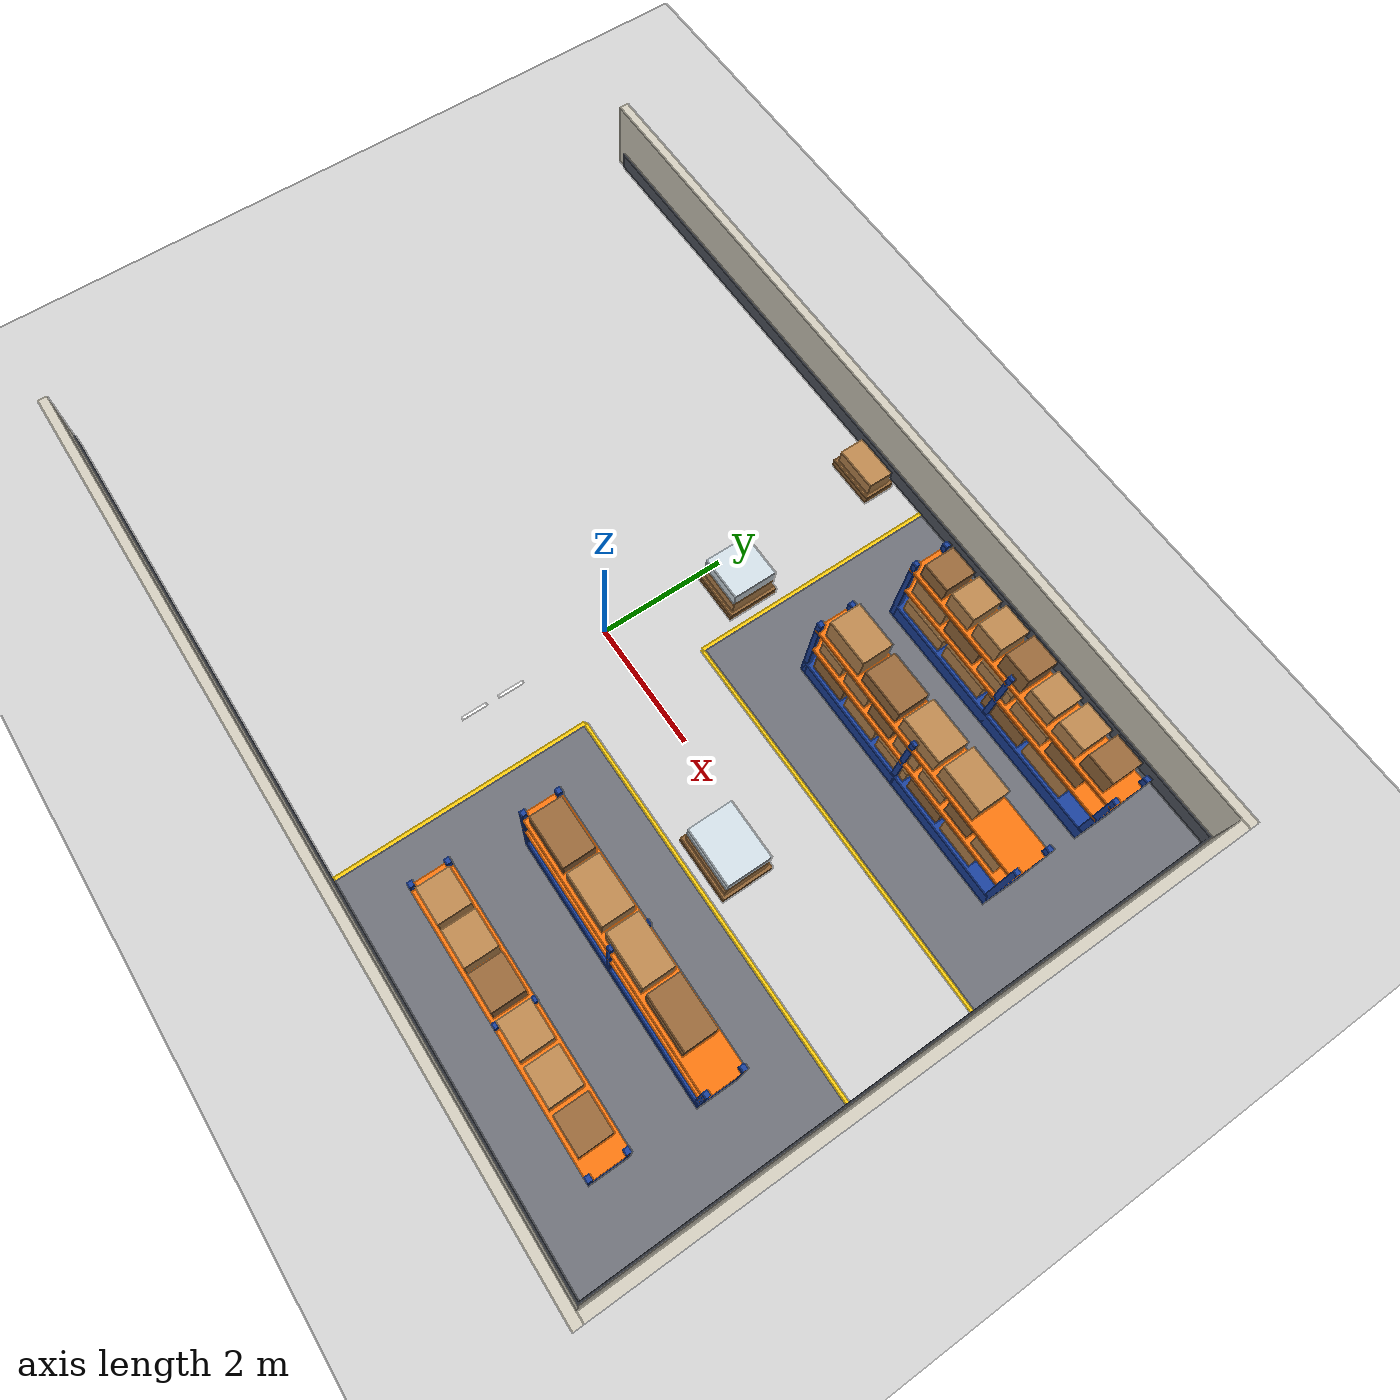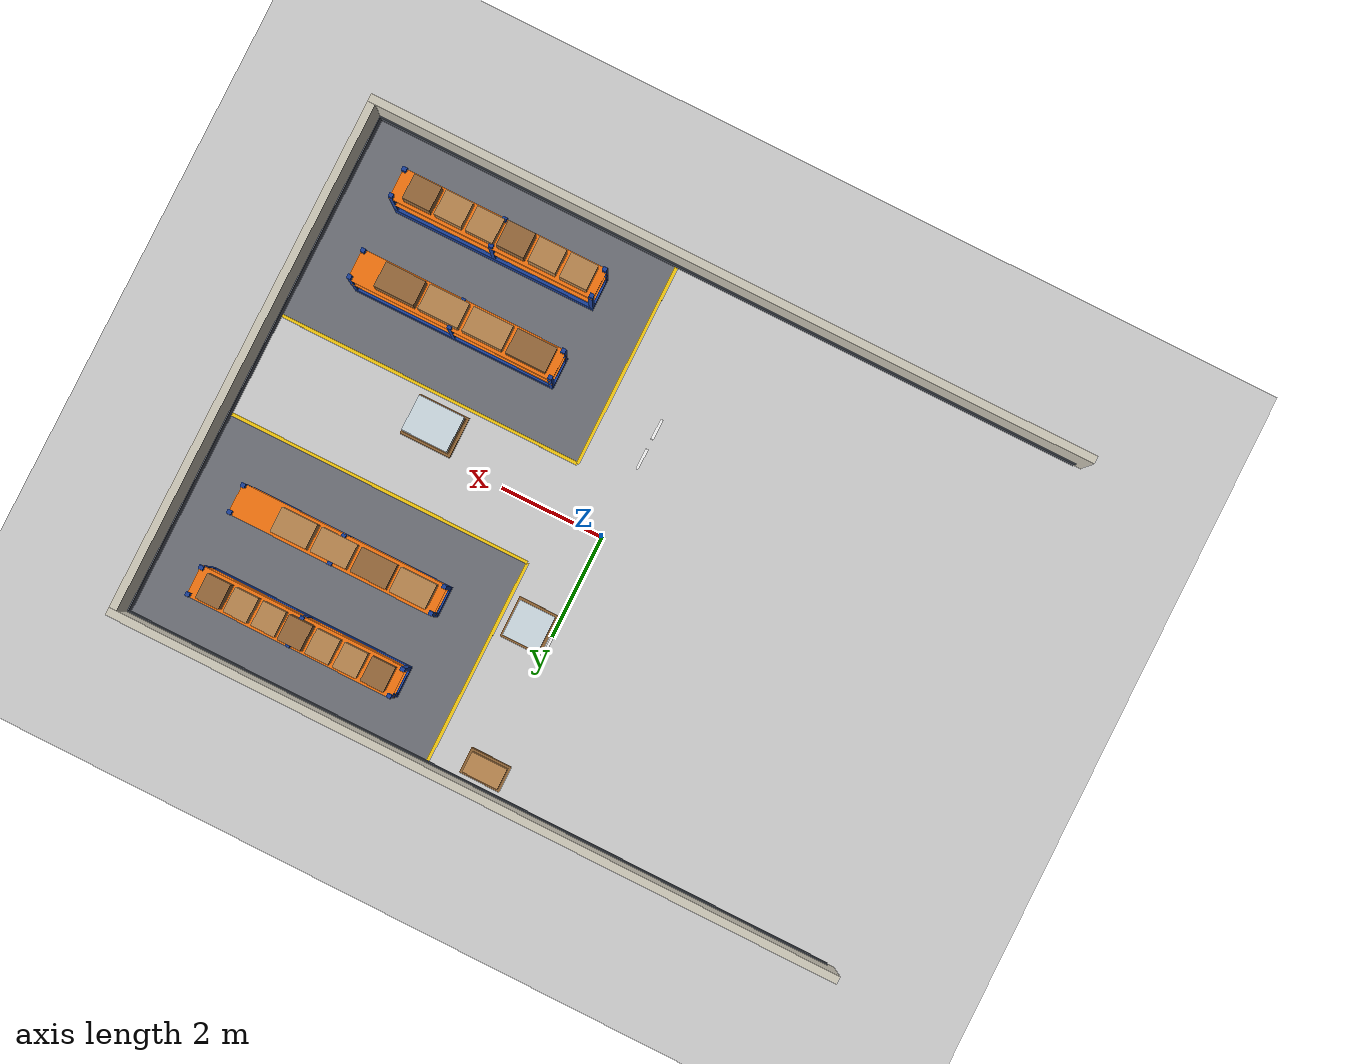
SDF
<sdf version="1.6">
 <world name="default">
  <include><uri>model://ground_plane</uri></include>
  <include><uri>model://sun</uri></include>
  <model name="amr_warehouse">
   <static>true</static>
   <link name="floor_storage_1_-1">
    <pose>4.000 -3.000 0.001 0 0 0</pose>
    <visual name="v">
     <geometry><box><size>6.000 4.000 0.002</size></box></geometry>
     <material>
      <ambient>0.42 0.43 0.46 1</ambient>
      <diffuse>0.42 0.43 0.46 1</diffuse>
      <specular>0.1 0.1 0.1 1</specular>
     </material>
    </visual>
   </link>
   <link name="floor_storage_1_1">
    <pose>4.000 3.000 0.001 0 0 0</pose>
    <visual name="v">
     <geometry><box><size>6.000 4.000 0.002</size></box></geometry>
     <material>
      <ambient>0.42 0.43 0.46 1</ambient>
      <diffuse>0.42 0.43 0.46 1</diffuse>
      <specular>0.1 0.1 0.1 1</specular>
     </material>
    </visual>
   </link>
   <link name="mark_ew_e_-1">
    <pose>4.000 -1.000 0.003 0 0 0</pose>
    <visual name="v">
     <geometry><box><size>6.000 0.060 0.002</size></box></geometry>
     <material>
      <ambient>0.95 0.78 0.05 1</ambient>
      <diffuse>0.95 0.78 0.05 1</diffuse>
      <specular>0.1 0.1 0.1 1</specular>
     </material>
    </visual>
   </link>
   <link name="mark_ns_s_1">
    <pose>1.000 -3.000 0.003 0 0 0</pose>
    <visual name="v">
     <geometry><box><size>0.060 4.000 0.002</size></box></geometry>
     <material>
      <ambient>0.95 0.78 0.05 1</ambient>
      <diffuse>0.95 0.78 0.05 1</diffuse>
      <specular>0.1 0.1 0.1 1</specular>
     </material>
    </visual>
   </link>
   <link name="mark_ns_n_1">
    <pose>1.000 3.000 0.003 0 0 0</pose>
    <visual name="v">
     <geometry><box><size>0.060 4.000 0.002</size></box></geometry>
     <material>
      <ambient>0.95 0.78 0.05 1</ambient>
      <diffuse>0.95 0.78 0.05 1</diffuse>
      <specular>0.1 0.1 0.1 1</specular>
     </material>
    </visual>
   </link>
   <link name="mark_ew_e_1">
    <pose>4.000 1.000 0.003 0 0 0</pose>
    <visual name="v">
     <geometry><box><size>6.000 0.060 0.002</size></box></geometry>
     <material>
      <ambient>0.95 0.78 0.05 1</ambient>
      <diffuse>0.95 0.78 0.05 1</diffuse>
      <specular>0.1 0.1 0.1 1</specular>
     </material>
    </visual>
   </link>
   <link name="mark_center_0">
    <pose>0.000 -2.200 0.003 0 0 0</pose>
    <visual name="v">
     <geometry><box><size>0.050 0.400 0.002</size></box></geometry>
     <material>
      <ambient>0.95 0.95 0.95 1</ambient>
      <diffuse>0.95 0.95 0.95 1</diffuse>
      <specular>0.1 0.1 0.1 1</specular>
     </material>
    </visual>
   </link>
   <link name="mark_center_1">
    <pose>0.000 -1.600 0.003 0 0 0</pose>
    <visual name="v">
     <geometry><box><size>0.050 0.400 0.002</size></box></geometry>
     <material>
      <ambient>0.95 0.95 0.95 1</ambient>
      <diffuse>0.95 0.95 0.95 1</diffuse>
      <specular>0.1 0.1 0.1 1</specular>
     </material>
    </visual>
   </link>
   <link name="mark_center_2">
    <pose>0.000 1.600 0.003 0 0 0</pose>
    <visual name="v">
     <geometry><box><size>0.050 0.400 0.002</size></box></geometry>
     <material>
      <ambient>0.95 0.95 0.95 1</ambient>
      <diffuse>0.95 0.95 0.95 1</diffuse>
      <specular>0.1 0.1 0.1 1</specular>
     </material>
    </visual>
   </link>
   <link name="mark_center_3">
    <pose>0.000 2.200 0.003 0 0 0</pose>
    <visual name="v">
     <geometry><box><size>0.050 0.400 0.002</size></box></geometry>
     <material>
      <ambient>0.95 0.95 0.95 1</ambient>
      <diffuse>0.95 0.95 0.95 1</diffuse>
      <specular>0.1 0.1 0.1 1</specular>
     </material>
    </visual>
   </link>
   <link name="wall_n">
    <pose>0.000 5.075 0.600 0 0 0</pose>
    <collision name="c"><geometry><box><size>14.300 0.150 1.200</size></box></geometry></collision>
    <visual name="v">
     <geometry><box><size>14.300 0.150 1.200</size></box></geometry>
     <material>
      <ambient>0.8 0.78 0.72 1</ambient>
      <diffuse>0.8 0.78 0.72 1</diffuse>
      <specular>0.1 0.1 0.1 1</specular>
     </material>
    </visual>
   </link>
   <link name="wall_s">
    <pose>0.000 -5.075 0.600 0 0 0</pose>
    <collision name="c"><geometry><box><size>14.300 0.150 1.200</size></box></geometry></collision>
    <visual name="v">
     <geometry><box><size>14.300 0.150 1.200</size></box></geometry>
     <material>
      <ambient>0.8 0.78 0.72 1</ambient>
      <diffuse>0.8 0.78 0.72 1</diffuse>
      <specular>0.1 0.1 0.1 1</specular>
     </material>
    </visual>
   </link>
   <link name="wall_e">
    <pose>7.075 0.000 0.600 0 0 0</pose>
    <collision name="c"><geometry><box><size>0.150 10.000 1.200</size></box></geometry></collision>
    <visual name="v">
     <geometry><box><size>0.150 10.000 1.200</size></box></geometry>
     <material>
      <ambient>0.8 0.78 0.72 1</ambient>
      <diffuse>0.8 0.78 0.72 1</diffuse>
      <specular>0.1 0.1 0.1 1</specular>
     </material>
    </visual>
   </link>
   <link name="wall_stripe0">
    <pose>0.000 4.990 0.150 0 0 0</pose>
    <visual name="v">
     <geometry><box><size>14.000 0.020 0.300</size></box></geometry>
     <material>
      <ambient>0.3 0.32 0.36 1</ambient>
      <diffuse>0.3 0.32 0.36 1</diffuse>
      <specular>0.1 0.1 0.1 1</specular>
     </material>
    </visual>
   </link>
   <link name="wall_stripe1">
    <pose>0.000 -4.990 0.150 0 0 0</pose>
    <visual name="v">
     <geometry><box><size>14.000 0.020 0.300</size></box></geometry>
     <material>
      <ambient>0.3 0.32 0.36 1</ambient>
      <diffuse>0.3 0.32 0.36 1</diffuse>
      <specular>0.1 0.1 0.1 1</specular>
     </material>
    </visual>
   </link>
   <link name="wall_stripe2">
    <pose>6.990 0.000 0.150 0 0 0</pose>
    <visual name="v">
     <geometry><box><size>0.020 10.000 0.300</size></box></geometry>
     <material>
      <ambient>0.3 0.32 0.36 1</ambient>
      <diffuse>0.3 0.32 0.36 1</diffuse>
      <specular>0.1 0.1 0.1 1</specular>
     </material>
    </visual>
   </link>
   <link name="rack_WS0_base">
    <pose>4.000 -2.300 0.150 0 0 0</pose>
    <collision name="c"><geometry><box><size>4.000 0.600 0.300</size></box></geometry></collision>
    <visual name="v">
     <geometry><box><size>4.000 0.600 0.300</size></box></geometry>
     <material>
      <ambient>0.1 0.25 0.6 1</ambient>
      <diffuse>0.1 0.25 0.6 1</diffuse>
      <specular>0.1 0.1 0.1 1</specular>
     </material>
    </visual>
   </link>
   <link name="rack_WS0_post00">
    <pose>2.040 -2.560 0.800 0 0 0</pose>
    <collision name="c"><geometry><box><size>0.080 0.080 1.600</size></box></geometry></collision>
    <visual name="v">
     <geometry><box><size>0.080 0.080 1.600</size></box></geometry>
     <material>
      <ambient>0.1 0.25 0.6 1</ambient>
      <diffuse>0.1 0.25 0.6 1</diffuse>
      <specular>0.1 0.1 0.1 1</specular>
     </material>
    </visual>
   </link>
   <link name="rack_WS0_post01">
    <pose>2.040 -2.040 0.800 0 0 0</pose>
    <collision name="c"><geometry><box><size>0.080 0.080 1.600</size></box></geometry></collision>
    <visual name="v">
     <geometry><box><size>0.080 0.080 1.600</size></box></geometry>
     <material>
      <ambient>0.1 0.25 0.6 1</ambient>
      <diffuse>0.1 0.25 0.6 1</diffuse>
      <specular>0.1 0.1 0.1 1</specular>
     </material>
    </visual>
   </link>
   <link name="rack_WS0_post10">
    <pose>4.000 -2.560 0.800 0 0 0</pose>
    <collision name="c"><geometry><box><size>0.080 0.080 1.600</size></box></geometry></collision>
    <visual name="v">
     <geometry><box><size>0.080 0.080 1.600</size></box></geometry>
     <material>
      <ambient>0.1 0.25 0.6 1</ambient>
      <diffuse>0.1 0.25 0.6 1</diffuse>
      <specular>0.1 0.1 0.1 1</specular>
     </material>
    </visual>
   </link>
   <link name="rack_WS0_post11">
    <pose>4.000 -2.040 0.800 0 0 0</pose>
    <collision name="c"><geometry><box><size>0.080 0.080 1.600</size></box></geometry></collision>
    <visual name="v">
     <geometry><box><size>0.080 0.080 1.600</size></box></geometry>
     <material>
      <ambient>0.1 0.25 0.6 1</ambient>
      <diffuse>0.1 0.25 0.6 1</diffuse>
      <specular>0.1 0.1 0.1 1</specular>
     </material>
    </visual>
   </link>
   <link name="rack_WS0_post20">
    <pose>5.960 -2.560 0.800 0 0 0</pose>
    <collision name="c"><geometry><box><size>0.080 0.080 1.600</size></box></geometry></collision>
    <visual name="v">
     <geometry><box><size>0.080 0.080 1.600</size></box></geometry>
     <material>
      <ambient>0.1 0.25 0.6 1</ambient>
      <diffuse>0.1 0.25 0.6 1</diffuse>
      <specular>0.1 0.1 0.1 1</specular>
     </material>
    </visual>
   </link>
   <link name="rack_WS0_post21">
    <pose>5.960 -2.040 0.800 0 0 0</pose>
    <collision name="c"><geometry><box><size>0.080 0.080 1.600</size></box></geometry></collision>
    <visual name="v">
     <geometry><box><size>0.080 0.080 1.600</size></box></geometry>
     <material>
      <ambient>0.1 0.25 0.6 1</ambient>
      <diffuse>0.1 0.25 0.6 1</diffuse>
      <specular>0.1 0.1 0.1 1</specular>
     </material>
    </visual>
   </link>
   <link name="rack_WS0_beam0">
    <pose>4.000 -2.300 0.850 0 0 0</pose>
    <collision name="c"><geometry><box><size>4.000 0.600 0.050</size></box></geometry></collision>
    <visual name="v">
     <geometry><box><size>4.000 0.600 0.050</size></box></geometry>
     <material>
      <ambient>0.95 0.45 0.05 1</ambient>
      <diffuse>0.95 0.45 0.05 1</diffuse>
      <specular>0.1 0.1 0.1 1</specular>
     </material>
    </visual>
   </link>
   <link name="rack_WS0_beam1">
    <pose>4.000 -2.300 1.400 0 0 0</pose>
    <collision name="c"><geometry><box><size>4.000 0.600 0.050</size></box></geometry></collision>
    <visual name="v">
     <geometry><box><size>4.000 0.600 0.050</size></box></geometry>
     <material>
      <ambient>0.95 0.45 0.05 1</ambient>
      <diffuse>0.95 0.45 0.05 1</diffuse>
      <specular>0.1 0.1 0.1 1</specular>
     </material>
    </visual>
   </link>
   <link name="rack_WS0_carton0_0">
    <pose>2.495 -2.300 0.510 0 0 0</pose>
    <visual name="v">
     <geometry><box><size>0.690 0.480 0.420</size></box></geometry>
     <material>
      <ambient>0.72 0.52 0.3 1</ambient>
      <diffuse>0.72 0.52 0.3 1</diffuse>
      <specular>0.1 0.1 0.1 1</specular>
     </material>
    </visual>
   </link>
   <link name="rack_WS0_carton0_1">
    <pose>3.265 -2.300 0.450 0 0 0</pose>
    <visual name="v">
     <geometry><box><size>0.690 0.480 0.300</size></box></geometry>
     <material>
      <ambient>0.72 0.52 0.3 1</ambient>
      <diffuse>0.72 0.52 0.3 1</diffuse>
      <specular>0.1 0.1 0.1 1</specular>
     </material>
    </visual>
   </link>
   <link name="rack_WS0_carton0_2">
    <pose>4.035 -2.300 0.470 0 0 0</pose>
    <visual name="v">
     <geometry><box><size>0.690 0.480 0.340</size></box></geometry>
     <material>
      <ambient>0.58 0.4 0.22 1</ambient>
      <diffuse>0.58 0.4 0.22 1</diffuse>
      <specular>0.1 0.1 0.1 1</specular>
     </material>
    </visual>
   </link>
   <link name="rack_WS0_carton0_3">
    <pose>4.805 -2.300 0.490 0 0 0</pose>
    <visual name="v">
     <geometry><box><size>0.690 0.480 0.380</size></box></geometry>
     <material>
      <ambient>0.72 0.52 0.3 1</ambient>
      <diffuse>0.72 0.52 0.3 1</diffuse>
      <specular>0.1 0.1 0.1 1</specular>
     </material>
    </visual>
   </link>
   <link name="rack_WS0_carton1_0">
    <pose>2.415 -2.300 1.045 0 0 0</pose>
    <visual name="v">
     <geometry><box><size>0.530 0.480 0.340</size></box></geometry>
     <material>
      <ambient>0.72 0.52 0.3 1</ambient>
      <diffuse>0.72 0.52 0.3 1</diffuse>
      <specular>0.1 0.1 0.1 1</specular>
     </material>
    </visual>
   </link>
   <link name="rack_WS0_carton1_1">
    <pose>3.025 -2.300 1.065 0 0 0</pose>
    <visual name="v">
     <geometry><box><size>0.530 0.480 0.380</size></box></geometry>
     <material>
      <ambient>0.58 0.4 0.22 1</ambient>
      <diffuse>0.58 0.4 0.22 1</diffuse>
      <specular>0.1 0.1 0.1 1</specular>
     </material>
    </visual>
   </link>
   <link name="rack_WS0_carton1_2">
    <pose>3.635 -2.300 1.085 0 0 0</pose>
    <visual name="v">
     <geometry><box><size>0.530 0.480 0.420</size></box></geometry>
     <material>
      <ambient>0.72 0.52 0.3 1</ambient>
      <diffuse>0.72 0.52 0.3 1</diffuse>
      <specular>0.1 0.1 0.1 1</specular>
     </material>
    </visual>
   </link>
   <link name="rack_WS0_carton1_3">
    <pose>4.245 -2.300 1.025 0 0 0</pose>
    <visual name="v">
     <geometry><box><size>0.530 0.480 0.300</size></box></geometry>
     <material>
      <ambient>0.72 0.52 0.3 1</ambient>
      <diffuse>0.72 0.52 0.3 1</diffuse>
      <specular>0.1 0.1 0.1 1</specular>
     </material>
    </visual>
   </link>
   <link name="rack_WS0_carton1_4">
    <pose>4.855 -2.300 1.045 0 0 0</pose>
    <visual name="v">
     <geometry><box><size>0.530 0.480 0.340</size></box></geometry>
     <material>
      <ambient>0.58 0.4 0.22 1</ambient>
      <diffuse>0.58 0.4 0.22 1</diffuse>
      <specular>0.1 0.1 0.1 1</specular>
     </material>
    </visual>
   </link>
   <link name="rack_WS0_carton1_5">
    <pose>5.465 -2.300 1.065 0 0 0</pose>
    <visual name="v">
     <geometry><box><size>0.530 0.480 0.380</size></box></geometry>
     <material>
      <ambient>0.72 0.52 0.3 1</ambient>
      <diffuse>0.72 0.52 0.3 1</diffuse>
      <specular>0.1 0.1 0.1 1</specular>
     </material>
    </visual>
   </link>
   <link name="rack_WS0_carton2_0">
    <pose>2.535 -2.300 1.575 0 0 0</pose>
    <visual name="v">
     <geometry><box><size>0.770 0.480 0.300</size></box></geometry>
     <material>
      <ambient>0.58 0.4 0.22 1</ambient>
      <diffuse>0.58 0.4 0.22 1</diffuse>
      <specular>0.1 0.1 0.1 1</specular>
     </material>
    </visual>
   </link>
   <link name="rack_WS0_carton2_1">
    <pose>3.385 -2.300 1.595 0 0 0</pose>
    <visual name="v">
     <geometry><box><size>0.770 0.480 0.340</size></box></geometry>
     <material>
      <ambient>0.72 0.52 0.3 1</ambient>
      <diffuse>0.72 0.52 0.3 1</diffuse>
      <specular>0.1 0.1 0.1 1</specular>
     </material>
    </visual>
   </link>
   <link name="rack_WS0_carton2_2">
    <pose>4.235 -2.300 1.615 0 0 0</pose>
    <visual name="v">
     <geometry><box><size>0.770 0.480 0.380</size></box></geometry>
     <material>
      <ambient>0.72 0.52 0.3 1</ambient>
      <diffuse>0.72 0.52 0.3 1</diffuse>
      <specular>0.1 0.1 0.1 1</specular>
     </material>
    </visual>
   </link>
   <link name="rack_WS0_carton2_3">
    <pose>5.085 -2.300 1.635 0 0 0</pose>
    <visual name="v">
     <geometry><box><size>0.770 0.480 0.420</size></box></geometry>
     <material>
      <ambient>0.58 0.4 0.22 1</ambient>
      <diffuse>0.58 0.4 0.22 1</diffuse>
      <specular>0.1 0.1 0.1 1</specular>
     </material>
    </visual>
   </link>
   <link name="rack_WS1_base">
    <pose>4.000 -3.900 0.150 0 0 0</pose>
    <collision name="c"><geometry><box><size>4.000 0.600 0.300</size></box></geometry></collision>
    <visual name="v">
     <geometry><box><size>4.000 0.600 0.300</size></box></geometry>
     <material>
      <ambient>0.1 0.25 0.6 1</ambient>
      <diffuse>0.1 0.25 0.6 1</diffuse>
      <specular>0.1 0.1 0.1 1</specular>
     </material>
    </visual>
   </link>
   <link name="rack_WS1_post00">
    <pose>2.040 -4.160 0.800 0 0 0</pose>
    <collision name="c"><geometry><box><size>0.080 0.080 1.600</size></box></geometry></collision>
    <visual name="v">
     <geometry><box><size>0.080 0.080 1.600</size></box></geometry>
     <material>
      <ambient>0.1 0.25 0.6 1</ambient>
      <diffuse>0.1 0.25 0.6 1</diffuse>
      <specular>0.1 0.1 0.1 1</specular>
     </material>
    </visual>
   </link>
   <link name="rack_WS1_post01">
    <pose>2.040 -3.640 0.800 0 0 0</pose>
    <collision name="c"><geometry><box><size>0.080 0.080 1.600</size></box></geometry></collision>
    <visual name="v">
     <geometry><box><size>0.080 0.080 1.600</size></box></geometry>
     <material>
      <ambient>0.1 0.25 0.6 1</ambient>
      <diffuse>0.1 0.25 0.6 1</diffuse>
      <specular>0.1 0.1 0.1 1</specular>
     </material>
    </visual>
   </link>
   <link name="rack_WS1_post10">
    <pose>4.000 -4.160 0.800 0 0 0</pose>
    <collision name="c"><geometry><box><size>0.080 0.080 1.600</size></box></geometry></collision>
    <visual name="v">
     <geometry><box><size>0.080 0.080 1.600</size></box></geometry>
     <material>
      <ambient>0.1 0.25 0.6 1</ambient>
      <diffuse>0.1 0.25 0.6 1</diffuse>
      <specular>0.1 0.1 0.1 1</specular>
     </material>
    </visual>
   </link>
   <link name="rack_WS1_post11">
    <pose>4.000 -3.640 0.800 0 0 0</pose>
    <collision name="c"><geometry><box><size>0.080 0.080 1.600</size></box></geometry></collision>
    <visual name="v">
     <geometry><box><size>0.080 0.080 1.600</size></box></geometry>
     <material>
      <ambient>0.1 0.25 0.6 1</ambient>
      <diffuse>0.1 0.25 0.6 1</diffuse>
      <specular>0.1 0.1 0.1 1</specular>
     </material>
    </visual>
   </link>
   <link name="rack_WS1_post20">
    <pose>5.960 -4.160 0.800 0 0 0</pose>
    <collision name="c"><geometry><box><size>0.080 0.080 1.600</size></box></geometry></collision>
    <visual name="v">
     <geometry><box><size>0.080 0.080 1.600</size></box></geometry>
     <material>
      <ambient>0.1 0.25 0.6 1</ambient>
      <diffuse>0.1 0.25 0.6 1</diffuse>
      <specular>0.1 0.1 0.1 1</specular>
     </material>
    </visual>
   </link>
   <link name="rack_WS1_post21">
    <pose>5.960 -3.640 0.800 0 0 0</pose>
    <collision name="c"><geometry><box><size>0.080 0.080 1.600</size></box></geometry></collision>
    <visual name="v">
     <geometry><box><size>0.080 0.080 1.600</size></box></geometry>
     <material>
      <ambient>0.1 0.25 0.6 1</ambient>
      <diffuse>0.1 0.25 0.6 1</diffuse>
      <specular>0.1 0.1 0.1 1</specular>
     </material>
    </visual>
   </link>
   <link name="rack_WS1_beam0">
    <pose>4.000 -3.900 0.850 0 0 0</pose>
    <collision name="c"><geometry><box><size>4.000 0.600 0.050</size></box></geometry></collision>
    <visual name="v">
     <geometry><box><size>4.000 0.600 0.050</size></box></geometry>
     <material>
      <ambient>0.95 0.45 0.05 1</ambient>
      <diffuse>0.95 0.45 0.05 1</diffuse>
      <specular>0.1 0.1 0.1 1</specular>
     </material>
    </visual>
   </link>
   <link name="rack_WS1_beam1">
    <pose>4.000 -3.900 1.400 0 0 0</pose>
    <collision name="c"><geometry><box><size>4.000 0.600 0.050</size></box></geometry></collision>
    <visual name="v">
     <geometry><box><size>4.000 0.600 0.050</size></box></geometry>
     <material>
      <ambient>0.95 0.45 0.05 1</ambient>
      <diffuse>0.95 0.45 0.05 1</diffuse>
      <specular>0.1 0.1 0.1 1</specular>
     </material>
    </visual>
   </link>
   <link name="rack_WS1_carton0_0">
    <pose>2.375 -3.900 0.450 0 0 0</pose>
    <visual name="v">
     <geometry><box><size>0.450 0.480 0.300</size></box></geometry>
     <material>
      <ambient>0.72 0.52 0.3 1</ambient>
      <diffuse>0.72 0.52 0.3 1</diffuse>
      <specular>0.1 0.1 0.1 1</specular>
     </material>
    </visual>
   </link>
   <link name="rack_WS1_carton0_1">
    <pose>2.905 -3.900 0.470 0 0 0</pose>
    <visual name="v">
     <geometry><box><size>0.450 0.480 0.340</size></box></geometry>
     <material>
      <ambient>0.58 0.4 0.22 1</ambient>
      <diffuse>0.58 0.4 0.22 1</diffuse>
      <specular>0.1 0.1 0.1 1</specular>
     </material>
    </visual>
   </link>
   <link name="rack_WS1_carton0_2">
    <pose>3.435 -3.900 0.490 0 0 0</pose>
    <visual name="v">
     <geometry><box><size>0.450 0.480 0.380</size></box></geometry>
     <material>
      <ambient>0.72 0.52 0.3 1</ambient>
      <diffuse>0.72 0.52 0.3 1</diffuse>
      <specular>0.1 0.1 0.1 1</specular>
     </material>
    </visual>
   </link>
   <link name="rack_WS1_carton0_3">
    <pose>3.965 -3.900 0.510 0 0 0</pose>
    <visual name="v">
     <geometry><box><size>0.450 0.480 0.420</size></box></geometry>
     <material>
      <ambient>0.72 0.52 0.3 1</ambient>
      <diffuse>0.72 0.52 0.3 1</diffuse>
      <specular>0.1 0.1 0.1 1</specular>
     </material>
    </visual>
   </link>
   <link name="rack_WS1_carton0_4">
    <pose>4.495 -3.900 0.450 0 0 0</pose>
    <visual name="v">
     <geometry><box><size>0.450 0.480 0.300</size></box></geometry>
     <material>
      <ambient>0.58 0.4 0.22 1</ambient>
      <diffuse>0.58 0.4 0.22 1</diffuse>
      <specular>0.1 0.1 0.1 1</specular>
     </material>
    </visual>
   </link>
   <link name="rack_WS1_carton0_5">
    <pose>5.025 -3.900 0.470 0 0 0</pose>
    <visual name="v">
     <geometry><box><size>0.450 0.480 0.340</size></box></geometry>
     <material>
      <ambient>0.72 0.52 0.3 1</ambient>
      <diffuse>0.72 0.52 0.3 1</diffuse>
      <specular>0.1 0.1 0.1 1</specular>
     </material>
    </visual>
   </link>
   <link name="rack_WS1_carton0_6">
    <pose>5.555 -3.900 0.490 0 0 0</pose>
    <visual name="v">
     <geometry><box><size>0.450 0.480 0.380</size></box></geometry>
     <material>
      <ambient>0.72 0.52 0.3 1</ambient>
      <diffuse>0.72 0.52 0.3 1</diffuse>
      <specular>0.1 0.1 0.1 1</specular>
     </material>
    </visual>
   </link>
   <link name="rack_WS1_carton1_0">
    <pose>2.495 -3.900 1.085 0 0 0</pose>
    <visual name="v">
     <geometry><box><size>0.690 0.480 0.420</size></box></geometry>
     <material>
      <ambient>0.58 0.4 0.22 1</ambient>
      <diffuse>0.58 0.4 0.22 1</diffuse>
      <specular>0.1 0.1 0.1 1</specular>
     </material>
    </visual>
   </link>
   <link name="rack_WS1_carton1_1">
    <pose>3.265 -3.900 1.025 0 0 0</pose>
    <visual name="v">
     <geometry><box><size>0.690 0.480 0.300</size></box></geometry>
     <material>
      <ambient>0.72 0.52 0.3 1</ambient>
      <diffuse>0.72 0.52 0.3 1</diffuse>
      <specular>0.1 0.1 0.1 1</specular>
     </material>
    </visual>
   </link>
   <link name="rack_WS1_carton1_2">
    <pose>4.035 -3.900 1.045 0 0 0</pose>
    <visual name="v">
     <geometry><box><size>0.690 0.480 0.340</size></box></geometry>
     <material>
      <ambient>0.72 0.52 0.3 1</ambient>
      <diffuse>0.72 0.52 0.3 1</diffuse>
      <specular>0.1 0.1 0.1 1</specular>
     </material>
    </visual>
   </link>
   <link name="rack_WS1_carton1_3">
    <pose>4.805 -3.900 1.065 0 0 0</pose>
    <visual name="v">
     <geometry><box><size>0.690 0.480 0.380</size></box></geometry>
     <material>
      <ambient>0.58 0.4 0.22 1</ambient>
      <diffuse>0.58 0.4 0.22 1</diffuse>
      <specular>0.1 0.1 0.1 1</specular>
     </material>
    </visual>
   </link>
   <link name="rack_WS1_carton2_0">
    <pose>2.415 -3.900 1.595 0 0 0</pose>
    <visual name="v">
     <geometry><box><size>0.530 0.480 0.340</size></box></geometry>
     <material>
      <ambient>0.72 0.52 0.3 1</ambient>
      <diffuse>0.72 0.52 0.3 1</diffuse>
      <specular>0.1 0.1 0.1 1</specular>
     </material>
    </visual>
   </link>
   <link name="rack_WS1_carton2_1">
    <pose>3.025 -3.900 1.615 0 0 0</pose>
    <visual name="v">
     <geometry><box><size>0.530 0.480 0.380</size></box></geometry>
     <material>
      <ambient>0.72 0.52 0.3 1</ambient>
      <diffuse>0.72 0.52 0.3 1</diffuse>
      <specular>0.1 0.1 0.1 1</specular>
     </material>
    </visual>
   </link>
   <link name="rack_WS1_carton2_2">
    <pose>3.635 -3.900 1.635 0 0 0</pose>
    <visual name="v">
     <geometry><box><size>0.530 0.480 0.420</size></box></geometry>
     <material>
      <ambient>0.58 0.4 0.22 1</ambient>
      <diffuse>0.58 0.4 0.22 1</diffuse>
      <specular>0.1 0.1 0.1 1</specular>
     </material>
    </visual>
   </link>
   <link name="rack_WS1_carton2_3">
    <pose>4.245 -3.900 1.575 0 0 0</pose>
    <visual name="v">
     <geometry><box><size>0.530 0.480 0.300</size></box></geometry>
     <material>
      <ambient>0.72 0.52 0.3 1</ambient>
      <diffuse>0.72 0.52 0.3 1</diffuse>
      <specular>0.1 0.1 0.1 1</specular>
     </material>
    </visual>
   </link>
   <link name="rack_WS1_carton2_4">
    <pose>4.855 -3.900 1.595 0 0 0</pose>
    <visual name="v">
     <geometry><box><size>0.530 0.480 0.340</size></box></geometry>
     <material>
      <ambient>0.72 0.52 0.3 1</ambient>
      <diffuse>0.72 0.52 0.3 1</diffuse>
      <specular>0.1 0.1 0.1 1</specular>
     </material>
    </visual>
   </link>
   <link name="rack_WS1_carton2_5">
    <pose>5.465 -3.900 1.615 0 0 0</pose>
    <visual name="v">
     <geometry><box><size>0.530 0.480 0.380</size></box></geometry>
     <material>
      <ambient>0.58 0.4 0.22 1</ambient>
      <diffuse>0.58 0.4 0.22 1</diffuse>
      <specular>0.1 0.1 0.1 1</specular>
     </material>
    </visual>
   </link>
   <link name="rack_WN0_base">
    <pose>4.000 2.300 0.150 0 0 0</pose>
    <collision name="c"><geometry><box><size>4.000 0.600 0.300</size></box></geometry></collision>
    <visual name="v">
     <geometry><box><size>4.000 0.600 0.300</size></box></geometry>
     <material>
      <ambient>0.1 0.25 0.6 1</ambient>
      <diffuse>0.1 0.25 0.6 1</diffuse>
      <specular>0.1 0.1 0.1 1</specular>
     </material>
    </visual>
   </link>
   <link name="rack_WN0_post00">
    <pose>2.040 2.040 0.800 0 0 0</pose>
    <collision name="c"><geometry><box><size>0.080 0.080 1.600</size></box></geometry></collision>
    <visual name="v">
     <geometry><box><size>0.080 0.080 1.600</size></box></geometry>
     <material>
      <ambient>0.1 0.25 0.6 1</ambient>
      <diffuse>0.1 0.25 0.6 1</diffuse>
      <specular>0.1 0.1 0.1 1</specular>
     </material>
    </visual>
   </link>
   <link name="rack_WN0_post01">
    <pose>2.040 2.560 0.800 0 0 0</pose>
    <collision name="c"><geometry><box><size>0.080 0.080 1.600</size></box></geometry></collision>
    <visual name="v">
     <geometry><box><size>0.080 0.080 1.600</size></box></geometry>
     <material>
      <ambient>0.1 0.25 0.6 1</ambient>
      <diffuse>0.1 0.25 0.6 1</diffuse>
      <specular>0.1 0.1 0.1 1</specular>
     </material>
    </visual>
   </link>
   <link name="rack_WN0_post10">
    <pose>4.000 2.040 0.800 0 0 0</pose>
    <collision name="c"><geometry><box><size>0.080 0.080 1.600</size></box></geometry></collision>
    <visual name="v">
     <geometry><box><size>0.080 0.080 1.600</size></box></geometry>
     <material>
      <ambient>0.1 0.25 0.6 1</ambient>
      <diffuse>0.1 0.25 0.6 1</diffuse>
      <specular>0.1 0.1 0.1 1</specular>
     </material>
    </visual>
   </link>
   <link name="rack_WN0_post11">
    <pose>4.000 2.560 0.800 0 0 0</pose>
    <collision name="c"><geometry><box><size>0.080 0.080 1.600</size></box></geometry></collision>
    <visual name="v">
     <geometry><box><size>0.080 0.080 1.600</size></box></geometry>
     <material>
      <ambient>0.1 0.25 0.6 1</ambient>
      <diffuse>0.1 0.25 0.6 1</diffuse>
      <specular>0.1 0.1 0.1 1</specular>
     </material>
    </visual>
   </link>
   <link name="rack_WN0_post20">
    <pose>5.960 2.040 0.800 0 0 0</pose>
    <collision name="c"><geometry><box><size>0.080 0.080 1.600</size></box></geometry></collision>
    <visual name="v">
     <geometry><box><size>0.080 0.080 1.600</size></box></geometry>
     <material>
      <ambient>0.1 0.25 0.6 1</ambient>
      <diffuse>0.1 0.25 0.6 1</diffuse>
      <specular>0.1 0.1 0.1 1</specular>
     </material>
    </visual>
   </link>
   <link name="rack_WN0_post21">
    <pose>5.960 2.560 0.800 0 0 0</pose>
    <collision name="c"><geometry><box><size>0.080 0.080 1.600</size></box></geometry></collision>
    <visual name="v">
     <geometry><box><size>0.080 0.080 1.600</size></box></geometry>
     <material>
      <ambient>0.1 0.25 0.6 1</ambient>
      <diffuse>0.1 0.25 0.6 1</diffuse>
      <specular>0.1 0.1 0.1 1</specular>
     </material>
    </visual>
   </link>
   <link name="rack_WN0_beam0">
    <pose>4.000 2.300 0.850 0 0 0</pose>
    <collision name="c"><geometry><box><size>4.000 0.600 0.050</size></box></geometry></collision>
    <visual name="v">
     <geometry><box><size>4.000 0.600 0.050</size></box></geometry>
     <material>
      <ambient>0.95 0.45 0.05 1</ambient>
      <diffuse>0.95 0.45 0.05 1</diffuse>
      <specular>0.1 0.1 0.1 1</specular>
     </material>
    </visual>
   </link>
   <link name="rack_WN0_beam1">
    <pose>4.000 2.300 1.400 0 0 0</pose>
    <collision name="c"><geometry><box><size>4.000 0.600 0.050</size></box></geometry></collision>
    <visual name="v">
     <geometry><box><size>4.000 0.600 0.050</size></box></geometry>
     <material>
      <ambient>0.95 0.45 0.05 1</ambient>
      <diffuse>0.95 0.45 0.05 1</diffuse>
      <specular>0.1 0.1 0.1 1</specular>
     </material>
    </visual>
   </link>
   <link name="rack_WN0_carton0_0">
    <pose>2.455 2.300 0.490 0 0 0</pose>
    <visual name="v">
     <geometry><box><size>0.610 0.480 0.380</size></box></geometry>
     <material>
      <ambient>0.58 0.4 0.22 1</ambient>
      <diffuse>0.58 0.4 0.22 1</diffuse>
      <specular>0.1 0.1 0.1 1</specular>
     </material>
    </visual>
   </link>
   <link name="rack_WN0_carton0_1">
    <pose>3.145 2.300 0.510 0 0 0</pose>
    <visual name="v">
     <geometry><box><size>0.610 0.480 0.420</size></box></geometry>
     <material>
      <ambient>0.72 0.52 0.3 1</ambient>
      <diffuse>0.72 0.52 0.3 1</diffuse>
      <specular>0.1 0.1 0.1 1</specular>
     </material>
    </visual>
   </link>
   <link name="rack_WN0_carton0_2">
    <pose>3.835 2.300 0.450 0 0 0</pose>
    <visual name="v">
     <geometry><box><size>0.610 0.480 0.300</size></box></geometry>
     <material>
      <ambient>0.72 0.52 0.3 1</ambient>
      <diffuse>0.72 0.52 0.3 1</diffuse>
      <specular>0.1 0.1 0.1 1</specular>
     </material>
    </visual>
   </link>
   <link name="rack_WN0_carton0_3">
    <pose>4.525 2.300 0.470 0 0 0</pose>
    <visual name="v">
     <geometry><box><size>0.610 0.480 0.340</size></box></geometry>
     <material>
      <ambient>0.58 0.4 0.22 1</ambient>
      <diffuse>0.58 0.4 0.22 1</diffuse>
      <specular>0.1 0.1 0.1 1</specular>
     </material>
    </visual>
   </link>
   <link name="rack_WN0_carton0_4">
    <pose>5.215 2.300 0.490 0 0 0</pose>
    <visual name="v">
     <geometry><box><size>0.610 0.480 0.380</size></box></geometry>
     <material>
      <ambient>0.72 0.52 0.3 1</ambient>
      <diffuse>0.72 0.52 0.3 1</diffuse>
      <specular>0.1 0.1 0.1 1</specular>
     </material>
    </visual>
   </link>
   <link name="rack_WN0_carton1_0">
    <pose>2.375 2.300 1.025 0 0 0</pose>
    <visual name="v">
     <geometry><box><size>0.450 0.480 0.300</size></box></geometry>
     <material>
      <ambient>0.72 0.52 0.3 1</ambient>
      <diffuse>0.72 0.52 0.3 1</diffuse>
      <specular>0.1 0.1 0.1 1</specular>
     </material>
    </visual>
   </link>
   <link name="rack_WN0_carton1_1">
    <pose>2.905 2.300 1.045 0 0 0</pose>
    <visual name="v">
     <geometry><box><size>0.450 0.480 0.340</size></box></geometry>
     <material>
      <ambient>0.72 0.52 0.3 1</ambient>
      <diffuse>0.72 0.52 0.3 1</diffuse>
      <specular>0.1 0.1 0.1 1</specular>
     </material>
    </visual>
   </link>
   <link name="rack_WN0_carton1_2">
    <pose>3.435 2.300 1.065 0 0 0</pose>
    <visual name="v">
     <geometry><box><size>0.450 0.480 0.380</size></box></geometry>
     <material>
      <ambient>0.58 0.4 0.22 1</ambient>
      <diffuse>0.58 0.4 0.22 1</diffuse>
      <specular>0.1 0.1 0.1 1</specular>
     </material>
    </visual>
   </link>
   <link name="rack_WN0_carton1_3">
    <pose>3.965 2.300 1.085 0 0 0</pose>
    <visual name="v">
     <geometry><box><size>0.450 0.480 0.420</size></box></geometry>
     <material>
      <ambient>0.72 0.52 0.3 1</ambient>
      <diffuse>0.72 0.52 0.3 1</diffuse>
      <specular>0.1 0.1 0.1 1</specular>
     </material>
    </visual>
   </link>
   <link name="rack_WN0_carton1_4">
    <pose>4.495 2.300 1.025 0 0 0</pose>
    <visual name="v">
     <geometry><box><size>0.450 0.480 0.300</size></box></geometry>
     <material>
      <ambient>0.72 0.52 0.3 1</ambient>
      <diffuse>0.72 0.52 0.3 1</diffuse>
      <specular>0.1 0.1 0.1 1</specular>
     </material>
    </visual>
   </link>
   <link name="rack_WN0_carton1_5">
    <pose>5.025 2.300 1.045 0 0 0</pose>
    <visual name="v">
     <geometry><box><size>0.450 0.480 0.340</size></box></geometry>
     <material>
      <ambient>0.58 0.4 0.22 1</ambient>
      <diffuse>0.58 0.4 0.22 1</diffuse>
      <specular>0.1 0.1 0.1 1</specular>
     </material>
    </visual>
   </link>
   <link name="rack_WN0_carton1_6">
    <pose>5.555 2.300 1.065 0 0 0</pose>
    <visual name="v">
     <geometry><box><size>0.450 0.480 0.380</size></box></geometry>
     <material>
      <ambient>0.72 0.52 0.3 1</ambient>
      <diffuse>0.72 0.52 0.3 1</diffuse>
      <specular>0.1 0.1 0.1 1</specular>
     </material>
    </visual>
   </link>
   <link name="rack_WN0_carton2_0">
    <pose>2.495 2.300 1.635 0 0 0</pose>
    <visual name="v">
     <geometry><box><size>0.690 0.480 0.420</size></box></geometry>
     <material>
      <ambient>0.72 0.52 0.3 1</ambient>
      <diffuse>0.72 0.52 0.3 1</diffuse>
      <specular>0.1 0.1 0.1 1</specular>
     </material>
    </visual>
   </link>
   <link name="rack_WN0_carton2_1">
    <pose>3.265 2.300 1.575 0 0 0</pose>
    <visual name="v">
     <geometry><box><size>0.690 0.480 0.300</size></box></geometry>
     <material>
      <ambient>0.58 0.4 0.22 1</ambient>
      <diffuse>0.58 0.4 0.22 1</diffuse>
      <specular>0.1 0.1 0.1 1</specular>
     </material>
    </visual>
   </link>
   <link name="rack_WN0_carton2_2">
    <pose>4.035 2.300 1.595 0 0 0</pose>
    <visual name="v">
     <geometry><box><size>0.690 0.480 0.340</size></box></geometry>
     <material>
      <ambient>0.72 0.52 0.3 1</ambient>
      <diffuse>0.72 0.52 0.3 1</diffuse>
      <specular>0.1 0.1 0.1 1</specular>
     </material>
    </visual>
   </link>
   <link name="rack_WN0_carton2_3">
    <pose>4.805 2.300 1.615 0 0 0</pose>
    <visual name="v">
     <geometry><box><size>0.690 0.480 0.380</size></box></geometry>
     <material>
      <ambient>0.72 0.52 0.3 1</ambient>
      <diffuse>0.72 0.52 0.3 1</diffuse>
      <specular>0.1 0.1 0.1 1</specular>
     </material>
    </visual>
   </link>
   <link name="rack_WN1_base">
    <pose>4.000 3.900 0.150 0 0 0</pose>
    <collision name="c"><geometry><box><size>4.000 0.600 0.300</size></box></geometry></collision>
    <visual name="v">
     <geometry><box><size>4.000 0.600 0.300</size></box></geometry>
     <material>
      <ambient>0.1 0.25 0.6 1</ambient>
      <diffuse>0.1 0.25 0.6 1</diffuse>
      <specular>0.1 0.1 0.1 1</specular>
     </material>
    </visual>
   </link>
   <link name="rack_WN1_post00">
    <pose>2.040 3.640 0.800 0 0 0</pose>
    <collision name="c"><geometry><box><size>0.080 0.080 1.600</size></box></geometry></collision>
    <visual name="v">
     <geometry><box><size>0.080 0.080 1.600</size></box></geometry>
     <material>
      <ambient>0.1 0.25 0.6 1</ambient>
      <diffuse>0.1 0.25 0.6 1</diffuse>
      <specular>0.1 0.1 0.1 1</specular>
     </material>
    </visual>
   </link>
   <link name="rack_WN1_post01">
    <pose>2.040 4.160 0.800 0 0 0</pose>
    <collision name="c"><geometry><box><size>0.080 0.080 1.600</size></box></geometry></collision>
    <visual name="v">
     <geometry><box><size>0.080 0.080 1.600</size></box></geometry>
     <material>
      <ambient>0.1 0.25 0.6 1</ambient>
      <diffuse>0.1 0.25 0.6 1</diffuse>
      <specular>0.1 0.1 0.1 1</specular>
     </material>
    </visual>
   </link>
   <link name="rack_WN1_post10">
    <pose>4.000 3.640 0.800 0 0 0</pose>
    <collision name="c"><geometry><box><size>0.080 0.080 1.600</size></box></geometry></collision>
    <visual name="v">
     <geometry><box><size>0.080 0.080 1.600</size></box></geometry>
     <material>
      <ambient>0.1 0.25 0.6 1</ambient>
      <diffuse>0.1 0.25 0.6 1</diffuse>
      <specular>0.1 0.1 0.1 1</specular>
     </material>
    </visual>
   </link>
   <link name="rack_WN1_post11">
    <pose>4.000 4.160 0.800 0 0 0</pose>
    <collision name="c"><geometry><box><size>0.080 0.080 1.600</size></box></geometry></collision>
    <visual name="v">
     <geometry><box><size>0.080 0.080 1.600</size></box></geometry>
     <material>
      <ambient>0.1 0.25 0.6 1</ambient>
      <diffuse>0.1 0.25 0.6 1</diffuse>
      <specular>0.1 0.1 0.1 1</specular>
     </material>
    </visual>
   </link>
   <link name="rack_WN1_post20">
    <pose>5.960 3.640 0.800 0 0 0</pose>
    <collision name="c"><geometry><box><size>0.080 0.080 1.600</size></box></geometry></collision>
    <visual name="v">
     <geometry><box><size>0.080 0.080 1.600</size></box></geometry>
     <material>
      <ambient>0.1 0.25 0.6 1</ambient>
      <diffuse>0.1 0.25 0.6 1</diffuse>
      <specular>0.1 0.1 0.1 1</specular>
     </material>
    </visual>
   </link>
   <link name="rack_WN1_post21">
    <pose>5.960 4.160 0.800 0 0 0</pose>
    <collision name="c"><geometry><box><size>0.080 0.080 1.600</size></box></geometry></collision>
    <visual name="v">
     <geometry><box><size>0.080 0.080 1.600</size></box></geometry>
     <material>
      <ambient>0.1 0.25 0.6 1</ambient>
      <diffuse>0.1 0.25 0.6 1</diffuse>
      <specular>0.1 0.1 0.1 1</specular>
     </material>
    </visual>
   </link>
   <link name="rack_WN1_beam0">
    <pose>4.000 3.900 0.850 0 0 0</pose>
    <collision name="c"><geometry><box><size>4.000 0.600 0.050</size></box></geometry></collision>
    <visual name="v">
     <geometry><box><size>4.000 0.600 0.050</size></box></geometry>
     <material>
      <ambient>0.95 0.45 0.05 1</ambient>
      <diffuse>0.95 0.45 0.05 1</diffuse>
      <specular>0.1 0.1 0.1 1</specular>
     </material>
    </visual>
   </link>
   <link name="rack_WN1_beam1">
    <pose>4.000 3.900 1.400 0 0 0</pose>
    <collision name="c"><geometry><box><size>4.000 0.600 0.050</size></box></geometry></collision>
    <visual name="v">
     <geometry><box><size>4.000 0.600 0.050</size></box></geometry>
     <material>
      <ambient>0.95 0.45 0.05 1</ambient>
      <diffuse>0.95 0.45 0.05 1</diffuse>
      <specular>0.1 0.1 0.1 1</specular>
     </material>
    </visual>
   </link>
   <link name="rack_WN1_carton0_0">
    <pose>2.535 3.900 0.450 0 0 0</pose>
    <visual name="v">
     <geometry><box><size>0.770 0.480 0.300</size></box></geometry>
     <material>
      <ambient>0.72 0.52 0.3 1</ambient>
      <diffuse>0.72 0.52 0.3 1</diffuse>
      <specular>0.1 0.1 0.1 1</specular>
     </material>
    </visual>
   </link>
   <link name="rack_WN1_carton0_1">
    <pose>3.385 3.900 0.470 0 0 0</pose>
    <visual name="v">
     <geometry><box><size>0.770 0.480 0.340</size></box></geometry>
     <material>
      <ambient>0.72 0.52 0.3 1</ambient>
      <diffuse>0.72 0.52 0.3 1</diffuse>
      <specular>0.1 0.1 0.1 1</specular>
     </material>
    </visual>
   </link>
   <link name="rack_WN1_carton0_2">
    <pose>4.235 3.900 0.490 0 0 0</pose>
    <visual name="v">
     <geometry><box><size>0.770 0.480 0.380</size></box></geometry>
     <material>
      <ambient>0.58 0.4 0.22 1</ambient>
      <diffuse>0.58 0.4 0.22 1</diffuse>
      <specular>0.1 0.1 0.1 1</specular>
     </material>
    </visual>
   </link>
   <link name="rack_WN1_carton0_3">
    <pose>5.085 3.900 0.510 0 0 0</pose>
    <visual name="v">
     <geometry><box><size>0.770 0.480 0.420</size></box></geometry>
     <material>
      <ambient>0.72 0.52 0.3 1</ambient>
      <diffuse>0.72 0.52 0.3 1</diffuse>
      <specular>0.1 0.1 0.1 1</specular>
     </material>
    </visual>
   </link>
   <link name="rack_WN1_carton1_0">
    <pose>2.455 3.900 1.065 0 0 0</pose>
    <visual name="v">
     <geometry><box><size>0.610 0.480 0.380</size></box></geometry>
     <material>
      <ambient>0.72 0.52 0.3 1</ambient>
      <diffuse>0.72 0.52 0.3 1</diffuse>
      <specular>0.1 0.1 0.1 1</specular>
     </material>
    </visual>
   </link>
   <link name="rack_WN1_carton1_1">
    <pose>3.145 3.900 1.085 0 0 0</pose>
    <visual name="v">
     <geometry><box><size>0.610 0.480 0.420</size></box></geometry>
     <material>
      <ambient>0.58 0.4 0.22 1</ambient>
      <diffuse>0.58 0.4 0.22 1</diffuse>
      <specular>0.1 0.1 0.1 1</specular>
     </material>
    </visual>
   </link>
   <link name="rack_WN1_carton1_2">
    <pose>3.835 3.900 1.025 0 0 0</pose>
    <visual name="v">
     <geometry><box><size>0.610 0.480 0.300</size></box></geometry>
     <material>
      <ambient>0.72 0.52 0.3 1</ambient>
      <diffuse>0.72 0.52 0.3 1</diffuse>
      <specular>0.1 0.1 0.1 1</specular>
     </material>
    </visual>
   </link>
   <link name="rack_WN1_carton1_3">
    <pose>4.525 3.900 1.045 0 0 0</pose>
    <visual name="v">
     <geometry><box><size>0.610 0.480 0.340</size></box></geometry>
     <material>
      <ambient>0.72 0.52 0.3 1</ambient>
      <diffuse>0.72 0.52 0.3 1</diffuse>
      <specular>0.1 0.1 0.1 1</specular>
     </material>
    </visual>
   </link>
   <link name="rack_WN1_carton1_4">
    <pose>5.215 3.900 1.065 0 0 0</pose>
    <visual name="v">
     <geometry><box><size>0.610 0.480 0.380</size></box></geometry>
     <material>
      <ambient>0.58 0.4 0.22 1</ambient>
      <diffuse>0.58 0.4 0.22 1</diffuse>
      <specular>0.1 0.1 0.1 1</specular>
     </material>
    </visual>
   </link>
   <link name="rack_WN1_carton2_0">
    <pose>2.375 3.900 1.575 0 0 0</pose>
    <visual name="v">
     <geometry><box><size>0.450 0.480 0.300</size></box></geometry>
     <material>
      <ambient>0.58 0.4 0.22 1</ambient>
      <diffuse>0.58 0.4 0.22 1</diffuse>
      <specular>0.1 0.1 0.1 1</specular>
     </material>
    </visual>
   </link>
   <link name="rack_WN1_carton2_1">
    <pose>2.905 3.900 1.595 0 0 0</pose>
    <visual name="v">
     <geometry><box><size>0.450 0.480 0.340</size></box></geometry>
     <material>
      <ambient>0.72 0.52 0.3 1</ambient>
      <diffuse>0.72 0.52 0.3 1</diffuse>
      <specular>0.1 0.1 0.1 1</specular>
     </material>
    </visual>
   </link>
   <link name="rack_WN1_carton2_2">
    <pose>3.435 3.900 1.615 0 0 0</pose>
    <visual name="v">
     <geometry><box><size>0.450 0.480 0.380</size></box></geometry>
     <material>
      <ambient>0.72 0.52 0.3 1</ambient>
      <diffuse>0.72 0.52 0.3 1</diffuse>
      <specular>0.1 0.1 0.1 1</specular>
     </material>
    </visual>
   </link>
   <link name="rack_WN1_carton2_3">
    <pose>3.965 3.900 1.635 0 0 0</pose>
    <visual name="v">
     <geometry><box><size>0.450 0.480 0.420</size></box></geometry>
     <material>
      <ambient>0.58 0.4 0.22 1</ambient>
      <diffuse>0.58 0.4 0.22 1</diffuse>
      <specular>0.1 0.1 0.1 1</specular>
     </material>
    </visual>
   </link>
   <link name="rack_WN1_carton2_4">
    <pose>4.495 3.900 1.575 0 0 0</pose>
    <visual name="v">
     <geometry><box><size>0.450 0.480 0.300</size></box></geometry>
     <material>
      <ambient>0.72 0.52 0.3 1</ambient>
      <diffuse>0.72 0.52 0.3 1</diffuse>
      <specular>0.1 0.1 0.1 1</specular>
     </material>
    </visual>
   </link>
   <link name="rack_WN1_carton2_5">
    <pose>5.025 3.900 1.595 0 0 0</pose>
    <visual name="v">
     <geometry><box><size>0.450 0.480 0.340</size></box></geometry>
     <material>
      <ambient>0.72 0.52 0.3 1</ambient>
      <diffuse>0.72 0.52 0.3 1</diffuse>
      <specular>0.1 0.1 0.1 1</specular>
     </material>
    </visual>
   </link>
   <link name="rack_WN1_carton2_6">
    <pose>5.555 3.900 1.615 0 0 0</pose>
    <visual name="v">
     <geometry><box><size>0.450 0.480 0.380</size></box></geometry>
     <material>
      <ambient>0.58 0.4 0.22 1</ambient>
      <diffuse>0.58 0.4 0.22 1</diffuse>
      <specular>0.1 0.1 0.1 1</specular>
     </material>
    </visual>
   </link>
   <link name="pallet_cross_e_deck">
    <pose>3.600 -0.450 0.075 0 0 0</pose>
    <collision name="c"><geometry><box><size>1.000 0.800 0.150</size></box></geometry></collision>
    <visual name="v">
     <geometry><box><size>1.000 0.800 0.150</size></box></geometry>
     <material>
      <ambient>0.55 0.38 0.2 1</ambient>
      <diffuse>0.55 0.38 0.2 1</diffuse>
      <specular>0.1 0.1 0.1 1</specular>
     </material>
    </visual>
   </link>
   <link name="pallet_cross_e_load0">
    <pose>3.600 -0.450 0.275 0 0 0</pose>
    <collision name="c"><geometry><box><size>0.900 0.700 0.250</size></box></geometry></collision>
    <visual name="v">
     <geometry><box><size>0.900 0.700 0.250</size></box></geometry>
     <material>
      <ambient>0.72 0.52 0.3 1</ambient>
      <diffuse>0.72 0.52 0.3 1</diffuse>
      <specular>0.1 0.1 0.1 1</specular>
     </material>
    </visual>
   </link>
   <link name="pallet_cross_e_load1">
    <pose>3.600 -0.450 0.525 0 0 0</pose>
    <collision name="c"><geometry><box><size>0.900 0.700 0.250</size></box></geometry></collision>
    <visual name="v">
     <geometry><box><size>0.900 0.700 0.250</size></box></geometry>
     <material>
      <ambient>0.8 0.85 0.88 1</ambient>
      <diffuse>0.8 0.85 0.88 1</diffuse>
      <specular>0.1 0.1 0.1 1</specular>
     </material>
    </visual>
   </link>
   <link name="pallet_main_n_deck">
    <pose>0.450 2.000 0.075 0 0 0</pose>
    <collision name="c"><geometry><box><size>0.800 0.800 0.150</size></box></geometry></collision>
    <visual name="v">
     <geometry><box><size>0.800 0.800 0.150</size></box></geometry>
     <material>
      <ambient>0.55 0.38 0.2 1</ambient>
      <diffuse>0.55 0.38 0.2 1</diffuse>
      <specular>0.1 0.1 0.1 1</specular>
     </material>
    </visual>
   </link>
   <link name="pallet_main_n_load0">
    <pose>0.450 2.000 0.275 0 0 0</pose>
    <collision name="c"><geometry><box><size>0.700 0.700 0.250</size></box></geometry></collision>
    <visual name="v">
     <geometry><box><size>0.700 0.700 0.250</size></box></geometry>
     <material>
      <ambient>0.72 0.52 0.3 1</ambient>
      <diffuse>0.72 0.52 0.3 1</diffuse>
      <specular>0.1 0.1 0.1 1</specular>
     </material>
    </visual>
   </link>
   <link name="pallet_main_n_load1">
    <pose>0.450 2.000 0.525 0 0 0</pose>
    <collision name="c"><geometry><box><size>0.700 0.700 0.250</size></box></geometry></collision>
    <visual name="v">
     <geometry><box><size>0.700 0.700 0.250</size></box></geometry>
     <material>
      <ambient>0.8 0.85 0.88 1</ambient>
      <diffuse>0.8 0.85 0.88 1</diffuse>
      <specular>0.1 0.1 0.1 1</specular>
     </material>
    </visual>
   </link>
   <link name="pallet_delivery_deck">
    <pose>0.000 4.650 0.075 0 0 0</pose>
    <collision name="c"><geometry><box><size>0.800 0.500 0.150</size></box></geometry></collision>
    <visual name="v">
     <geometry><box><size>0.800 0.500 0.150</size></box></geometry>
     <material>
      <ambient>0.55 0.38 0.2 1</ambient>
      <diffuse>0.55 0.38 0.2 1</diffuse>
      <specular>0.1 0.1 0.1 1</specular>
     </material>
    </visual>
   </link>
   <link name="pallet_delivery_load0">
    <pose>0.000 4.650 0.275 0 0 0</pose>
    <collision name="c"><geometry><box><size>0.700 0.400 0.250</size></box></geometry></collision>
    <visual name="v">
     <geometry><box><size>0.700 0.400 0.250</size></box></geometry>
     <material>
      <ambient>0.72 0.52 0.3 1</ambient>
      <diffuse>0.72 0.52 0.3 1</diffuse>
      <specular>0.1 0.1 0.1 1</specular>
     </material>
    </visual>
   </link>
  </model>
 </world>
</sdf>
